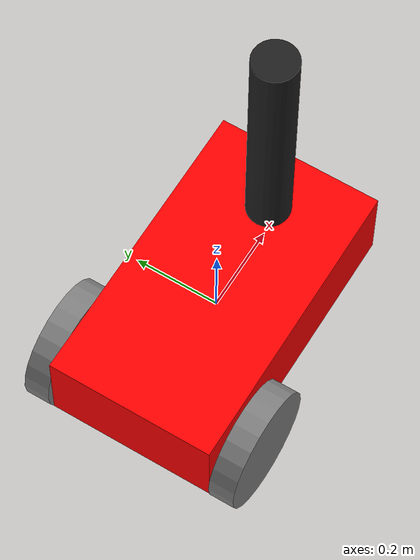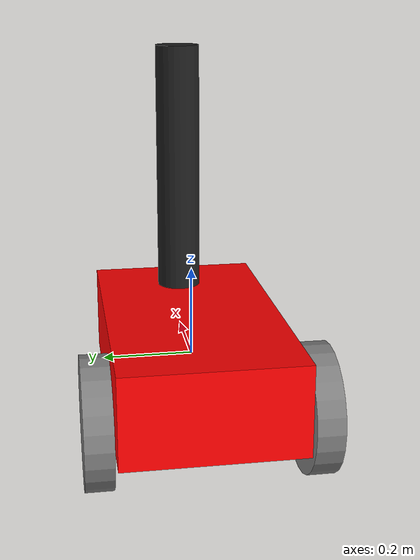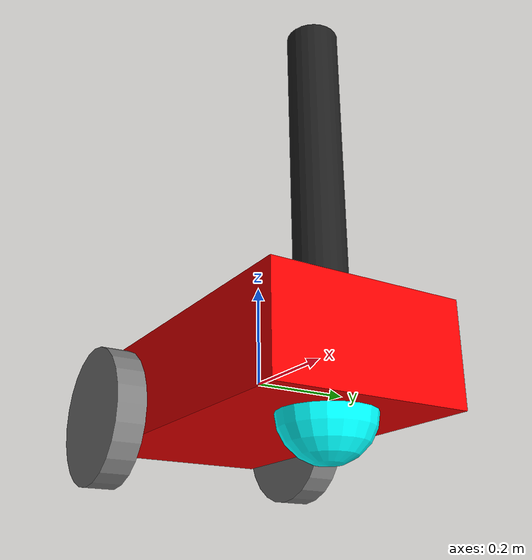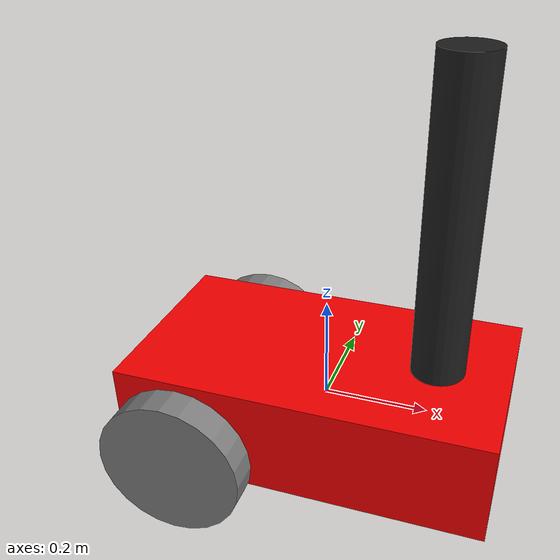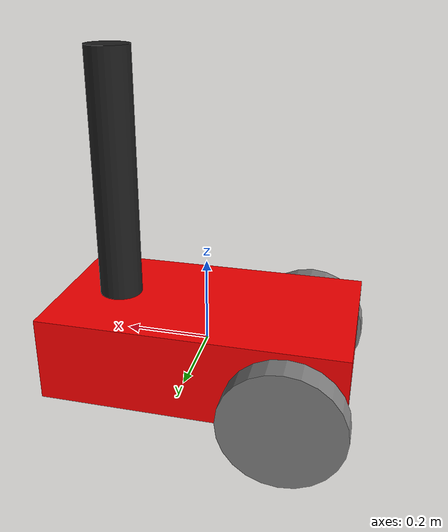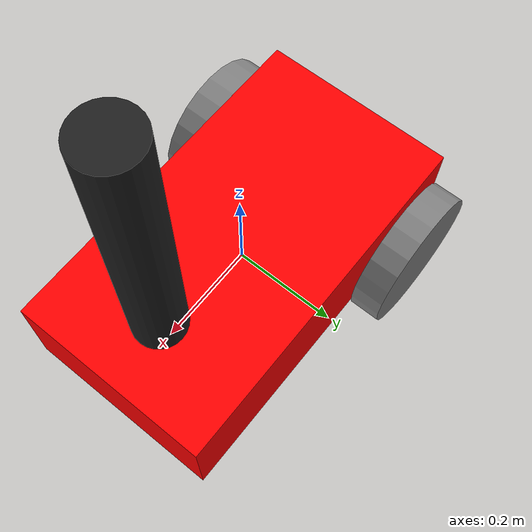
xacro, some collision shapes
<?xml version="1.0"?>
<robot name="two_wheeled_robot" xmlns:xacro="http://ros.org/wiki/xacro">

  <!-- ****************** ROBOT CONSTANTS *******************************  -->
  <!-- Define the size of the robot's main chassis in meters -->
  <xacro:property name="base_width" value="0.39"/>
  <xacro:property name="base_length" value="0.70"/>
  <xacro:property name="base_height" value="0.20"/>

  <!-- Define the shape of the robot's two back wheels in meters -->
  <xacro:property name="wheel_radius" value="0.14"/>
  <xacro:property name="wheel_width" value="0.06"/>

  <!-- x-axis points forward, y-axis points to left, z-axis points upwards -->
  <!-- Define the gap between the wheel and chassis along y-axis in meters -->
  <xacro:property name="wheel_ygap" value="0.035"/>

  <!-- Position the wheels along the z-axis -->
  <xacro:property name="wheel_zoff" value="0.05"/>

  <!-- Position the wheels along the x-axis -->
  <xacro:property name="wheel_xoff" value="0.221"/>

  <!-- Position the caster wheel along the x-axis -->
  <xacro:property name="caster_xoff" value="0.217"/>

  <!-- Define intertial property macros  -->
  <xacro:macro name="box_inertia" params="m w h d">
    <inertial>
      <origin xyz="0 0 0" rpy="${pi/2} 0 ${pi/2}"/>
      <mass value="${m}"/>
      <inertia ixx="${(m/12) * (h*h + d*d)}" ixy="0.0" ixz="0.0" iyy="${(m/12) * (w*w + d*d)}" iyz="0.0" izz="${(m/12) * (w*w + h*h)}"/>
    </inertial>
  </xacro:macro>

  <xacro:macro name="cylinder_inertia" params="m r h">
    <inertial>
      <origin xyz="0 0 0" rpy="${pi/2} 0 0" />
      <mass value="${m}"/>
      <inertia ixx="${(m/12) * (3*r*r + h*h)}" ixy = "0" ixz = "0" iyy="${(m/12) * (3*r*r + h*h)}" iyz = "0" izz="${(m/2) * (r*r)}"/>
    </inertial>
  </xacro:macro>

  <xacro:macro name="sphere_inertia" params="m r">
    <inertial>
      <mass value="${m}"/>
      <inertia ixx="${(2/5) * m * (r*r)}" ixy="0.0" ixz="0.0" iyy="${(2/5) * m * (r*r)}" iyz="0.0" izz="${(2/5) * m * (r*r)}"/>
    </inertial>
  </xacro:macro>

  <!-- ********************** ROBOT BASE *********************************  -->
  <link name="base_link">
    <visual>
      <origin xyz="0 0 -0.05" rpy="1.5707963267949 0 3.141592654"/>
      <geometry>
        <mesh filename="file://$(find two_wheeled_robot)/meshes/robot_base.stl" />
      </geometry>
      <material name="Red">
        <color rgba="1.0 0.0 0.0 1.0"/>
      </material>
    </visual>

    <collision>
      <geometry>
        <box size="${base_length} ${base_width} ${base_height}"/>
      </geometry>
    </collision>

    <xacro:box_inertia m="15.0" w="${base_width}" d="${base_length}" h="${base_height}"/>
  </link>

  <gazebo reference="base_link">
    <material>Gazebo/Red</material>
  </gazebo>

  <!-- ****************** ROBOT BASE FOOTPRINT ***************************  -->
  <!-- Define the center of the main robot chassis projected on the ground -->
  <link name="base_footprint">
  </link>

  <!-- The base footprint of the robot is located underneath the chassis -->
  <joint name="base_joint" type="fixed">
    <parent link="base_link"/>
    <child link="base_footprint"/>
    <origin xyz="0.0 0.0 ${-(wheel_radius+wheel_zoff)}" rpy="0 0 0"/>
  </joint>

  <!-- *********************** DRIVE WHEELS ******************************  -->
  <xacro:macro name="wheel" params="prefix x_reflect y_reflect">
    <link name="${prefix}_link">
      <visual>
        <origin xyz="0 0 0" rpy="${pi/2} 0 0"/>
        <geometry>
            <cylinder radius="${wheel_radius}" length="${wheel_width}"/>
        </geometry>
        <material name="Gray">
          <color rgba="0.5 0.5 0.5 1.0"/>
        </material>
      </visual>

      <collision>
        <origin xyz="0 0 0" rpy="${pi/2} 0 0"/>
        <geometry>
          <cylinder radius="${wheel_radius}" length="${wheel_width}"/>
        </geometry>
      </collision>

      <xacro:cylinder_inertia m="0.5" r="${wheel_radius}" h="${wheel_width}"/>
    </link>

    <!-- Connect the wheels to the base_link at the appropriate location, and
         define a continuous joint to allow the wheels to freely rotate about
         an axis -->
    <joint name="${prefix}_joint" type="continuous">
      <parent link="base_link"/>
      <child link="${prefix}_link"/>
      <origin xyz="${x_reflect*wheel_xoff} ${y_reflect*(base_width/2+wheel_ygap)} ${-wheel_zoff}" rpy="0 0 0"/>
      <axis xyz="0 1 0"/>
    </joint>
  </xacro:macro>

  <xacro:wheel prefix="drivewhl_l" x_reflect="-1" y_reflect="1" />
  <xacro:wheel prefix="drivewhl_r" x_reflect="-1" y_reflect="-1" />

  <!-- *********************** CASTER WHEEL ******************************  -->
  <!-- We add a caster wheel. It will be modeled as sphere.
       We define the wheel’s geometry, material and the joint to connect it to
       base_link at the appropriate location. -->
  <link name="front_caster">
    <visual>
      <geometry>
        <sphere radius="${(wheel_radius+wheel_zoff-(base_height/2))}"/>
      </geometry>
      <material name="Cyan">
        <color rgba="0 1.0 1.0 1.0"/>
      </material>
    </visual>

    <collision>
      <origin xyz="0 0 0" rpy="0 0 0"/>
      <geometry>
        <sphere radius="${(wheel_radius+wheel_zoff-(base_height/2))}"/>
      </geometry>
    </collision>

    <xacro:sphere_inertia m="0.5" r="${(wheel_radius+wheel_zoff-(base_height/2))}"/>
  </link>

  <gazebo reference="front_caster">
    <mu1>0.01</mu1>
    <mu2>0.01</mu2>
    <material>Gazebo/White</material>
  </gazebo>

  <joint name="caster_joint" type="fixed">
    <parent link="base_link"/>
    <child link="front_caster"/>
    <origin xyz="${caster_xoff} 0.0 ${-(base_height/2)}" rpy="0 0 0"/>
  </joint>

  <!-- *********************** IMU SETUP *********************************  -->
  <!-- Each sensor must be attached to a link.                              -->
  <link name="imu_link">
    <visual>
      <geometry>
        <box size="0.1 0.1 0.1"/>
      </geometry>
    </visual>

    <collision>
      <geometry>
        <box size="0.1 0.1 0.1"/>
      </geometry>
    </collision>

    <xacro:box_inertia m="0.1" w="0.1" d="0.1" h="0.1"/>
  </link>

  <joint name="imu_joint" type="fixed">
    <parent link="base_link"/>
    <child link="imu_link"/>
    <origin xyz="0 0 0.01"/>
  </joint>

  <gazebo reference="imu_link">
    <gravity>true</gravity>
    <sensor name="twr_imu" type="imu">
      <always_on>true</always_on>
      <update_rate>100</update_rate>
      <visualize>true</visualize>
      <imu>
        <orientation>
          <x>
            <noise type="gaussian">
              <mean>0.0</mean>
              <stddev>2e-3</stddev>
            </noise>
          </x>
          <y>
            <noise type="gaussian">
              <mean>0.0</mean>
              <stddev>2e-3</stddev>
            </noise>
          </y>
          <z>
            <noise type="gaussian">
              <mean>0.0</mean>
              <stddev>2e-3</stddev>
            </noise>
          </z>
        </orientation>
        <angular_velocity>
          <x>
            <noise type="gaussian">
              <mean>0.0</mean>
              <stddev>2e-4</stddev>
            </noise>
          </x>
          <y>
            <noise type="gaussian">
              <mean>0.0</mean>
              <stddev>2e-4</stddev>
            </noise>
          </y>
          <z>
            <noise type="gaussian">
              <mean>0.0</mean>
              <stddev>2e-4</stddev>
            </noise>
          </z>
        </angular_velocity>
        <linear_acceleration>
          <x>
            <noise type="gaussian">
              <mean>0.0</mean>
              <stddev>1.7e-2</stddev>
            </noise>
          </x>
          <y>
            <noise type="gaussian">
              <mean>0.0</mean>
              <stddev>1.7e-2</stddev>
            </noise>
          </y>
          <z>
            <noise type="gaussian">
              <mean>0.0</mean>
              <stddev>1.7e-2</stddev>
            </noise>
          </z>
        </linear_acceleration>
      </imu>
      <plugin name="two_wheeled_robot_imu" filename="libgazebo_ros_imu_sensor.so">
        <initial_orientation_as_reference>false</initial_orientation_as_reference>
        <frame_name>imu_link</frame_name>
        <ros>
          <namespace>/imu</namespace>
          <remapping>~/out:=data</remapping>
        </ros>
      </plugin>
    </sensor>
</gazebo>

  <!-- *********************** LIDAR SETUP **********************************  -->
 <link name="lidar_link">
    <inertial>
      <origin xyz="0 0 0" rpy="0 0 0"/>
      <mass value="0.125"/>
      <inertia ixx="0.001"  ixy="0"  ixz="0" iyy="0.001" iyz="0" izz="0.001" />
    </inertial>

    <collision>
      <origin xyz="0 0 0" rpy="0 0 0"/>
      <geometry>
         <cylinder radius="0.0508" length="0.75"/>
      </geometry>
    </collision>

    <visual>
      <origin xyz="0 0 0" rpy="0 0 0"/>
      <geometry>
         <cylinder radius="0.0508" length="0.75"/>
      </geometry>
    </visual>
  </link>

  <joint name="lidar_joint" type="fixed">
    <parent link="base_link"/>
    <child link="lidar_link"/>
    <origin xyz="0.215 0.0 0.30" rpy="0 0 0"/>
  </joint>

  <gazebo reference="lidar_link">
    <sensor name="lidar" type="ray">
      <always_on>true</always_on>
      <visualize>true</visualize>
      <update_rate>5</update_rate>
      <ray>
        <scan>
          <horizontal>
            <samples>120</samples>
            <resolution>1.000000</resolution>
            <min_angle>-3.14159</min_angle>
            <max_angle>3.14159</max_angle>
          </horizontal>
        </scan>
        <range>
          <min>0.3</min>
          <max>15.0</max>
          <resolution>0.015</resolution>
        </range>
        <noise>
          <type>gaussian</type>
          <mean>0.0</mean>
          <stddev>0.01</stddev>
        </noise>
      </ray>
      <plugin name="scan" filename="libgazebo_ros_ray_sensor.so">
        <ros>
          <remapping>~/out:=scan</remapping>
        </ros>
        <output_type>sensor_msgs/LaserScan</output_type>
        <frame_name>lidar_link</frame_name>
      </plugin>
    </sensor>
  </gazebo>
  <gazebo reference="lidar_link">
    <mu1>0.01</mu1>
    <mu2>0.01</mu2>
    <material>Gazebo/Black</material>
  </gazebo>

 <!-- *********************** WHEEL ODOMETRY ***************************    -->
  <gazebo>
    <plugin name="two_wheeled_robot_diff_drive" filename="libgazebo_ros_diff_drive.so">

      <update_rate>30</update_rate>

      <!-- wheels -->
      <left_joint>drivewhl_l_joint</left_joint>
      <right_joint>drivewhl_r_joint</right_joint>

      <!-- kinematics -->
      <wheel_separation>0.52</wheel_separation>
      <wheel_diameter>0.28</wheel_diameter>

      <!-- limits -->
      <max_wheel_torque>20</max_wheel_torque>
      <max_wheel_acceleration>1.0</max_wheel_acceleration>

      <!-- Receive velocity commands on this ROS topic -->
      <command_topic>cmd_vel</command_topic>

      <!-- output -->
      <!-- When false, publish no wheel odometry data to a ROS topic -->
      <publish_odom>true</publish_odom>

      <!-- When true, publish coordinate transform from odom to base_footprint -->
      <!-- I usually use the robot_localization package to publish this transform -->
      <publish_odom_tf>false</publish_odom_tf>

      <!-- When true, publish coordinate transform from base_link to the wheels -->
      <!-- The robot_state_publisher package is often used to publish this transform -->
      <publish_wheel_tf>true</publish_wheel_tf>

      <odometry_topic>odom</odometry_topic>
      <odometry_frame>odom</odometry_frame>
      <robot_base_frame>base_link</robot_base_frame>

      <odometry_source>1</odometry_source>
      <ros>
        <remapping>odom:=wheel/odometry</remapping>
      </ros>
    </plugin>
  </gazebo>
</robot>
